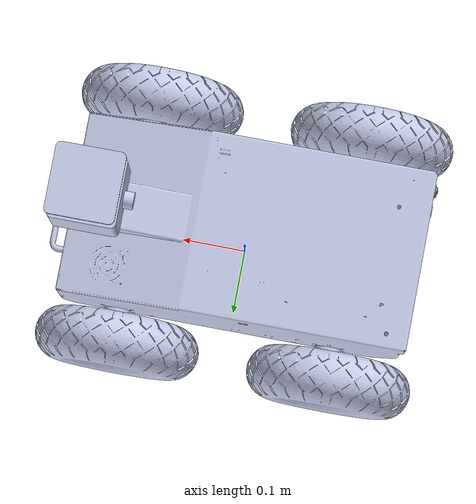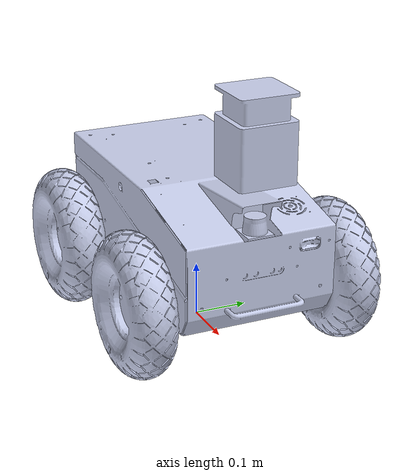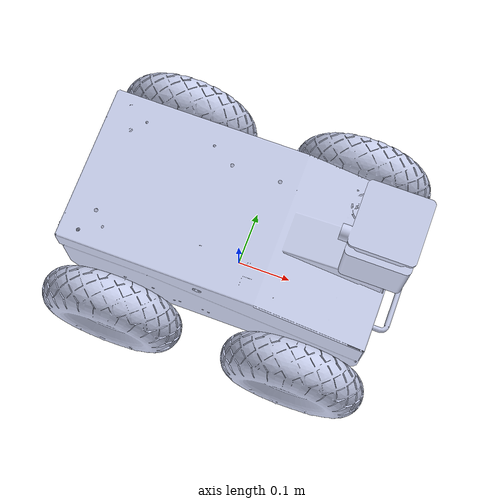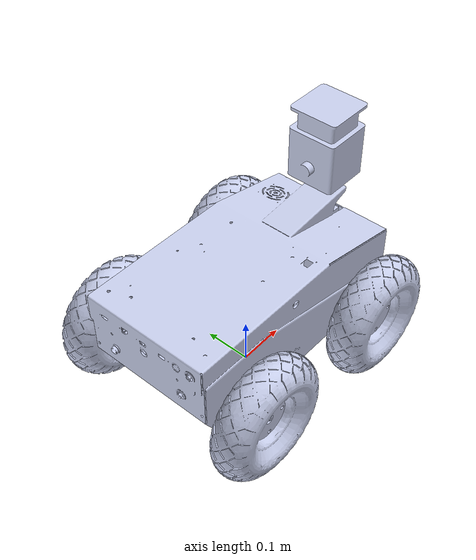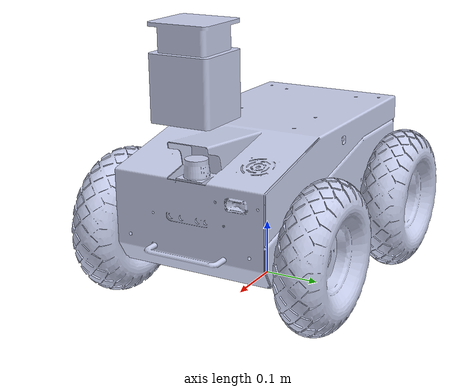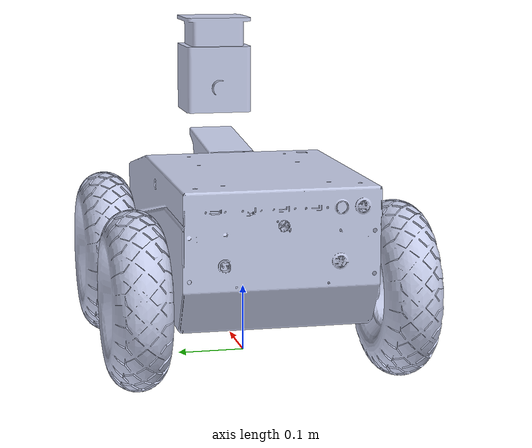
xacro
<?xml version="1.0"?>

<robot xmlns:xacro="http://www.ros.org/wiki/xacro" name="komodo2_robot" description="Komodo2 Robot">
	<xacro:property name="M_PI" value="3.1415926535897931" />

      <link name="base_footprint"/>

 <joint name="base_footprint_joint" type="fixed">
    <parent link="base_footprint"/>
    <child link="base_link"/>
    <origin xyz="0.00 0.00 0.1275" rpy="0.0 0.0 0.0"/>
  </joint>

  <link
    name="base_link">
    <inertial>
      <origin
        xyz="0.0030152 0.00057861 0.0749"
        rpy="0 0 0" />
      <mass
        value="20.0058" />
      <inertia
        ixx="0.025582"
        ixy="0.0010034"
        ixz="-0.0041152"
        iyy="0.086418"
        iyz="-3.8058E-05"
        izz="0.091994" />
    </inertial>
    <visual>
      <origin
        xyz="0 0 0"
        rpy="0 0 0" />
      <geometry>
        <mesh
          filename="package://komodo2_description/mesh/base.STL" />
      </geometry>
      <material
        name="">
        <color
          rgba="0.79216 0.81961 0.93333 1" />
      </material>
    </visual>
    <collision>
      <origin
        xyz="0 0 0"
        rpy="0 0 0" />
      <geometry>
        <mesh
          filename="package://komodo2_description/mesh/base.STL" />
      </geometry>
    </collision>
  </link>

  <link
    name="rear_left_wheel_link">
    <inertial>
      <origin
        xyz="9.8684E-07 -9.3003E-05 -1.8753E-05"
        rpy="0 0 0" />
      <mass
        value="1.8524" />
      <inertia
        ixx="0.0069046"
        ixy="-3.8717E-08"
        ixz="2.0707E-07"
        iyy="0.17"
        iyz="-1.0124E-07"
        izz="0.0069054" />
      </inertial>
    <visual>
      <origin
        xyz="0 0 0"
        rpy="0 0 0" />
      <geometry>
        <mesh
          filename="package://komodo2_description/mesh/wheel.STL" />
      </geometry>
      <material
        name="">
        <color
          rgba="0.79216 0.81961 0.93333 1" />
      </material>
    </visual>
    <collision>
      <origin
        xyz="0 0 0"
        rpy="${M_PI/2} 0 0" />
      <geometry>
	  <cylinder  length="0.05" radius="0.127"/>
      </geometry>
    </collision>
  </link>
  <joint
    name="rear_left_wheel_joint"
    type="continuous">
    <origin
      xyz="-0.165 0.18955 0"
      rpy="0 0 0" />
    <parent
      link="base_link" />
    <child
      link="rear_left_wheel_link" />
    <axis
      xyz="0 1 0" />
    <limit
      effort="0.4"
      velocity="32.0" />
  </joint>
  <link
    name="front_left_wheel_link">
    <inertial>
      <origin
        xyz="9.8687E-07 -9.3003E-05 -1.8753E-05"
        rpy="0 0 0" />
      <mass
        value="1.8524" />
      <inertia
        ixx="0.0069046"
        ixy="-3.8717E-08"
        ixz="2.0707E-07"
        iyy="0.17"
        iyz="-1.0124E-07"
        izz="0.0069054" />
      </inertial>
    <visual>
      <origin
        xyz="0 0 0"
        rpy="0 0 0" />
      <geometry>
        <mesh
          filename="package://komodo2_description/mesh/wheel.STL" />
      </geometry>
      <material
        name="">
        <color
          rgba="0.79216 0.81961 0.93333 1" />
      </material>
    </visual>
    <collision>
      <origin
        xyz="0 0 0"
        rpy="${M_PI/2} 0 0" />
      <geometry>
	  <cylinder  length="0.05" radius="0.127"/>
      </geometry>
    </collision>
  </link>
  <joint
    name="front_left_wheel_joint"
    type="continuous">
    <origin
      xyz="0.165 0.18955 0"
      rpy="0 0 0" />
    <parent
      link="base_link" />
    <child
      link="front_left_wheel_link" />
    <axis
      xyz="0 1 0" />
    <limit
      effort="0.4"
      velocity="32.0" />
  </joint>
  <link
    name="rear_right_wheel_link">
    <inertial>
      <origin
        xyz="-9.8675E-07 9.3004E-05 -1.8753E-05"
        rpy="0 0 0" />
      <mass
        value="1.8524" />
      <inertia
        ixx="0.0069046"
        ixy="-3.8717E-08"
        ixz="-2.0707E-07"
        iyy="0.17"
        iyz="1.0124E-07"
        izz="0.0069054" />
    </inertial>
    <visual>
      <origin
        xyz="0 0 0"
        rpy="0 0 0" />
      <geometry>
        <mesh
          filename="package://komodo2_description/mesh/wheel.STL" />
      </geometry>
      <material
        name="">
        <color
          rgba="0.79216 0.81961 0.93333 1" />
      </material>
    </visual>
    <collision>
      <origin
        xyz="0 0 0"
        rpy="${M_PI/2} 0 0" />
      <geometry>
	  <cylinder  length="0.05" radius="0.127"/>
      </geometry>
    </collision>
  </link>
  <joint
    name="rear_right_wheel_joint"
    type="continuous">
    <origin
      xyz="-0.165 -0.18955 0"
      rpy="0 0 0" />
    <parent
      link="base_link" />
    <child
      link="rear_right_wheel_link" />
    <axis
      xyz="0 1 0" />
    <limit
      effort="0.4"
      velocity="32.0" />
  </joint>
  <link
    name="front_right_wheel_link">
    <inertial>
      <origin
        xyz="-9.867E-07 9.3004E-05 -1.8753E-05"
        rpy="0 0 0" />
      <mass
        value="1.8524" />
      <inertia
        ixx="0.0069046"
        ixy="-3.8717E-08"
        ixz="-2.0707E-07"
        iyy="0.17"
        iyz="1.0124E-07"
        izz="0.0069054" />
    </inertial>
    <visual>
      <origin
        xyz="0 0 0"
        rpy="0 0 0" />
      <geometry>
        <mesh
          filename="package://komodo2_description/mesh/wheel.STL" />
      </geometry>
      <material
        name="">
        <color
          rgba="0.79216 0.81961 0.93333 1" />
      </material>
    </visual>
    <collision>
      <origin
        xyz="0 0 0"
        rpy="${M_PI/2} 0 0" />
      <geometry>
	  <cylinder  length="0.05" radius="0.127"/>
      </geometry>
    </collision>
  </link>
  <joint
    name="front_right_wheel_joint"
    type="continuous">
    <origin
      xyz="0.165 -0.18955 0"
      rpy="0 0 0" />
    <parent
      link="base_link" />
    <child
      link="front_right_wheel_link" />
    <axis
      xyz="0 1 0" />
    <limit
      effort="0.4"
      velocity="32.0" />
  </joint>
  <link name="laser_link" >
    <visual>
      <origin
        xyz="0 0 0"
        rpy="0 0 0" />
      <geometry>
        <mesh
          filename="package://lms1xx/meshes/sick-lms1xx.stl" />
      </geometry>
      <material
        name="">
        <color
          rgba="0.79216 0.81961 0.93333 1" />
      </material>
    </visual>
    </link>
  <joint
    name="laser_joint"
    type="fixed">
    <origin
      xyz="0.230497501055752 0 0.318"
      rpy="0 0 0" />
    <parent
      link="base_link" />
    <child
      link="laser_link" />
    <axis
      xyz="0 0 0" />
    <limit
      effort="0.4"
      velocity="32.0" />
  </joint>
  <link
    name="rgb_cam_link" />
  <joint
    name="rgb_cam_joint"
    type="fixed">
    <origin
      xyz="0.25425 0.0875 0.1"
      rpy="0 0 0" />
    <parent
      link="base_link" />
    <child
      link="rgb_cam_link" />
    <axis
      xyz="0 0 0" />
  </joint>
  <link
    name="rear_urf_link" />
  <joint
    name="rear_urf_joint"
    type="fixed">
    <origin
      xyz="-0.2745 0 0.108"
      rpy="0 0 3.1416" />
    <parent
      link="base_link" />
    <child
      link="rear_urf_link" />
    <axis
      xyz="0 0 0" />
  </joint>
  <link
    name="right_urf_link" />
  <joint
    name="right_urf_joint"
    type="fixed">
    <origin
      xyz="-0.029313 -0.13725 0.13851"
      rpy="0 -2.0713E-16 -1.5708" />
    <parent
      link="base_link" />
    <child
      link="right_urf_link" />
    <axis
      xyz="0 0 0" />
  </joint>
  <link
    name="left_urf_link" />
  <joint
    name="left_urf_joint"
    type="fixed">
    <origin
      xyz="-0.029313 0.13725 0.13851"
      rpy="0 2.0713E-16 1.5708" />
    <parent
      link="base_link" />
    <child
      link="left_urf_link" />
    <axis
      xyz="0 0 0" />
  </joint>

  <link
    name="camera_link" />
    <joint name="camera_joint" type="fixed">
        <origin
        xyz="0.25525 0.0006082 0.063584"
        rpy="0 0 0" />
    <parent
        link="base_link" />
        <child link="camera_link" />
    </joint>

      <xacro:property name="asus_xtion_pro_depth_rel_rgb_py" value="0.0480" />
  <xacro:property name="asus_xtion_pro_cam_rel_rgb_py"   value="0.0220" />

    <joint name="camera_rgb_joint" type="fixed">
      <origin xyz="0 ${asus_xtion_pro_cam_rel_rgb_py} 0"
              rpy="0 0 0"/>
      <parent link="camera_link"/>
      <child link="camera_rgb_frame"/>
    </joint>

    <link name="camera_rgb_frame">
      <inertial>
        <mass value="0.001" />
        <origin xyz="0 0 0" />
        <inertia ixx="0.0001" ixy="0.0" ixz="0.0"
          iyy="0.0001" iyz="0.0"
          izz="0.0001" />
      </inertial>
    </link>

    <joint name="camera_rgb_optical_joint" type="fixed">
      <origin xyz="0 0 0" rpy="${-M_PI/2} 0 ${-M_PI/2}" />
      <parent link="camera_rgb_frame" />
      <child link="camera_rgb_optical_frame" />
    </joint>

    <link name="camera_rgb_optical_frame">
      <inertial>
        <mass value="0.001" />
        <origin xyz="0 0 0" />
        <inertia ixx="0.0001" ixy="0.0" ixz="0.0"
          iyy="0.0001" iyz="0.0"
          izz="0.0001" />
      </inertial>
    </link>

    <joint name="camera_depth_joint" type="fixed">
      <origin xyz="0 ${asus_xtion_pro_depth_rel_rgb_py} 0" rpy="0 0 0" />
      <parent link="camera_link" />
      <child link="camera_depth_frame" />
    </joint>

    <link name="camera_depth_frame">
      <inertial>
        <mass value="0.01" />
        <origin xyz="0 0 0" />
        <inertia ixx="0.001" ixy="0.0" ixz="0.0"
          iyy="0.001" iyz="0.0"
          izz="0.001" />
      </inertial>
    </link>

    <joint name="camera_depth_optical_joint" type="fixed">
      <origin xyz="0 0 0" rpy="${-M_PI/2} 0 ${-M_PI/2}" />
      <parent link="camera_depth_frame" />
      <child link="camera_depth_optical_frame" />
    </joint>

    <link name="camera_depth_optical_frame">
      <inertial>
        <mass value="0.001" />
        <origin xyz="0 0 0" />
        <inertia ixx="0.0001" ixy="0.0" ixz="0.0"
          iyy="0.0001" iyz="0.0"
          izz="0.0001" />
      </inertial>
</link>

</robot>
